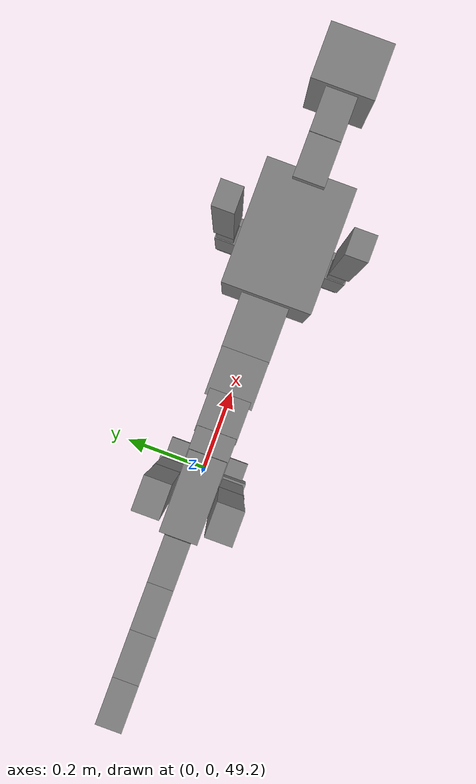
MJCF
<mujoco model="dog">

    <default>
        <joint armature="0.02" stiffness="1" damping="0.2" limited="true"/>
        <geom condim="3" friction="1 0.05 0.05" margin="0.01"/>
        <motor ctrllimited="true" ctrlrange="-1.0 1.0" forcelimited="true" gear="50"/>
    </default>

    <compiler inertiafromgeom="true" angle="radian"/>

    <option timestep="0.016" iterations="50" tolerance="1e-10" solver="Newton" jacobian="dense" cone="pyramidal"/>

    <size nconmax="20000" njmax="60000" nstack="5000000"/>
    <visual>
        <map force="0.1" zfar="30"/>
        <rgba haze="0.15 0.25 0.35 1"/>
        <quality shadowsize="2048"/>
        <global offwidth="800" offheight="800"/>
    </visual>

    <asset>
        <texture type="skybox" builtin="gradient" rgb1="0.3 0.5 0.7" rgb2="0 0 0" width="512" height="512"/>
        <texture name="texplane" type="2d" builtin="checker" rgb1=".2 .3 .4" rgb2=".1 0.15 0.2" width="512" height="512"
                 mark="cross" markrgb=".8 .8 .8"/>
        <texture name="texgeom" type="cube" builtin="flat" mark="cross" width="127" height="1278" rgb1="0.8 0.6 0.4"
                 rgb2="0.8 0.6 0.4" markrgb="1 1 1" random="0.01"/>

        <material name="matplane" reflectance="0.3" texture="texplane" texrepeat="1 1" texuniform="true"/>
        <material name="matgeom" texture="texgeom" texuniform="true" rgba="0.8 0.6 .4 1"/>
    </asset>

    <worldbody>
        <geom name="floor" pos="0 0 0" size="0 0 .25" type="plane" material="matplane" condim="3"/>

        <light directional="false" diffuse=".2 .2 .2" specular="0 0 0" pos="0 0 5" dir="0 0 -1" castshadow="false"/>
        <light mode="targetbodycom" target="torso" directional="false" diffuse=".8 .8 .8" specular="0.3 0.3 0.3"
               pos="0 0 4.0" dir="0 0 -1"/>

        <body name="root" pos="0 0 50">
            <freejoint name="root_1"/>
            <geom type="box" pos="0 0 -0.02" size="0.0774  0.0358  0.063" density="2030"/>

            <body name="spine1" pos="0.054 0 0">
                <joint name="spine1_y" axis="0 1 0" range="0 0.7" limited="true"/>
                <geom type="box" pos="0.02375 0 -0.03" size="0.04375  0.0375  0.05985" density="2030"/>

                <body name="spine2" pos="0.0612 0 0">
                    <joint name="spine2_y" axis="0 1 0" range="-0.15 0.15" limited="true"/>
                    <geom type="box" pos="0.03555  0  -0.04" size="0.04055  0.039  0.06615" density="2030"/>

                    <body name="spine3" pos="0.0730 0 0">
                        <joint name="spine3_y" axis="0 1 0" range="-0.15 0.15" limited="true"/>
                        <geom type="box" pos="0.03555  0  -0.057" size="0.04555  0.0445  0.081" density="2030"/>

                        <body name="spine4" pos="0.0780 0 0">
                            <joint name="spine4_y" axis="0 1 0" range="-0.15 0.15" limited="true"/>
                            <geom type="box" pos="0.05265  0  -0.07" size="0.05265  0.045  0.09135" density="2030"/>

                            <body name="torso" pos="0.1082 0 0">
                                <joint name="torso_y" axis="0 1 0" range="-0.15 0.15" limited="true"/>
                                <geom type="box" pos="0.11925  0  -0.085" size="0.11925  0.085  0.11745"
                                      density="2030"/>

                                <body name="neck1" pos="0.2160  0   0.0180">
                                    <joint name="neck1_y" axis="0 1 0" range="-1.2  -1" limited="true"/>
                                    <geom type="box" pos="0.0423  0  0" size="0.0423  0.03  0.036" density="2325"/>

                                    <body name="neck2" pos="0.0853  0  0">
                                        <joint name="neck2_y" axis="0 1 0" range="0.1  0" limited="true"/>
                                        <geom type="box" pos="0.0423  0  0" size="0.0423  0.03  0.036" density="2325"/>

                                        <body name="head" pos="0.0853  0  0">
                                            <joint name="head_y" axis="0 1 0" range="-0.3  -0.2" limited="true"/>
                                            <geom type="box" pos="0.0531  0  -0.055" size="0.0531  0.06  0.1044"
                                                  density="4030"/>

                                        </body>
                                    </body>
                                </body>

                                <body name="front_shoulder" pos="0.156  0   -0.0480">
                                    <joint name="front_shoulder_y" axis="0 1 0" range="-1 1.5" limited="true"/>
                                    <geom type="box" pos="0 0.13 -0.1438" size="0.0267  0.0229  0.1705" density="1158"/>
                                    <geom type="box" pos="0 -0.13 -0.1438" size="0.0267  0.0229  0.1705"
                                          density="1158"/>

                                    <body name="front_elbow" pos="0  0  -0.2877">
                                        <joint name="front_elbow_y" axis="0 1 0" range="-2 0" limited="true"/>
                                        <geom type="box" pos="0 0.13 -0.0802" size="0.0194  0.0198  0.0802"
                                              density="1081"/>
                                        <geom type="box" pos="0 -0.13 -0.0802" size="0.0194  0.0198  0.0802"
                                              density="1081"/>

                                        <body name="front_wrist" pos="0  0  -0.1605">
                                            <joint name="front_wrist_y" axis="0 1 0" range="-0.2 0" limited="true"/>
                                            <geom type="box" pos="0 0.13 -0.0794" size="0.0217  0.0241  0.0926"
                                                  density="1664"/>
                                            <geom type="box" pos="0 -0.13 -0.0794" size="0.0217  0.0241  0.0926"
                                                  density="1664"/>

                                            <body name="front_finger_end" pos="0  0  -0.1589">
                                                <joint name="front_finger_y" axis="0 1 0" range="-0.4 1"
                                                       limited="true"/>
                                                <geom type="box" pos="0.0223  0.13  -0.0181"
                                                      size="0.0408  0.0223  0.0331" density="1515"/>
                                                <geom type="box" pos="0.0223  -0.13  -0.0181"
                                                      size="0.0408  0.0223  0.0331" density="1515"/>

                                            </body>

                                        </body>
                                    </body>
                                </body>

                            </body>
                        </body>
                    </body>
                </body>
            </body>

            <body name="back_hip" pos="-0.03 0 -0.018">
                <joint name="back_hip_y" axis="0 1 0" range="-1.5 0.3" limited="true"/>
                <geom type="box" pos="0 0.07 -0.1458" size="0.0342  0.0269  0.1686" density="1154"/>
                <geom type="box" pos="0 -0.07 -0.1458" size="0.0342  0.0269  0.1686" density="1154"/>

                <body name="back_knee" pos="0  0  -0.2916">
                    <joint name="back_knee_y" axis="0 1 0" range="0 2.8" limited="true"/>
                    <geom type="box" pos="0 0.07 -0.1757" size="0.0308  0.0304  0.1912" density="1227"/>
                    <geom type="box" pos="0 -0.07 -0.1757" size="0.0308  0.0304  0.1912" density="1227"/>

                    <body name="back_ankle" pos="0  0  -0.3513">
                        <joint name="back_ankle_y" axis="0 1 0" range="-2.2 0" limited="true"/>
                        <geom type="box" pos="0 0.07 -0.0372" size="0.0366  0.0366  0.0485" density="1284"/>
                        <geom type="box" pos="0 -0.07 -0.0372" size="0.0366  0.0366  0.0485" density="1284"/>

                        <body name="back_toe_end" pos="0  0  -0.0744">
                            <joint name="back_toe_y" axis="0 1 0" range="-0.4 1" limited="true"/>
                            <geom type="box" pos="0.0278  0.07  0.0006" size="0.0510  0.0278  0.0144" density="1515"/>
                            <geom type="box" pos="0.0278  -0.07  0.0006" size="0.0510  0.0278  0.0144" density="1515"/>

                        </body>
                    </body>
                </body>
            </body>

            <body name="tail1" pos="-0.074 0 -0.006">
                <joint name="tail1_y" axis="0 1 0" range="-0.2 0.2" limited="true"/>
                <geom type="box" pos="-0.0536  0  0" size="0.045  0.025  0.0175" density="1587"/>

                <body name="tail2" pos="-0.09 0 0">
                    <joint name="tail2_y" axis="0 1 0" range="-0.2 0.2" limited="true"/>
                    <geom type="box" pos="-0.0536  0  0" size="0.045  0.025  0.0175" density="1587"/>

                    <body name="tail3" pos="-0.09 0 0">
                        <joint name="tail3_y" axis="0 1 0" range="-0.2 0.2" limited="true"/>
                        <geom type="box" pos="-0.0536  0  0" size="0.045  0.025  0.0175" density="1587"/>

                        <body name="tail4" pos="-0.09 0 0">
                            <joint name="tail4_y" axis="0 1 0" range="-0.2 0.2" limited="true"/>
                            <geom type="box" pos="-0.0536  0  0" size="0.045  0.025  0.0175" density="1587"/>

                        </body>
                    </body>
                </body>
            </body>
        </body>
    </worldbody>

    <actuator>
        <motor joint="spine1_y" forcerange="-150 150     "/>
        <motor joint="spine2_y" forcerange="-150 150     "/>
        <motor joint="spine3_y" forcerange="-150 150     "/>
        <motor joint="spine4_y" forcerange="-150 150     "/>
        <motor joint="torso_y" forcerange="-150 150     "/>
        <motor joint="neck1_y" forcerange="-100 100       "/>
        <motor joint="neck2_y" forcerange="-100 100       "/>
        <motor joint="head_y" forcerange="-150 150       "/>
        <motor joint="front_shoulder_y" forcerange="-152.26 100.16"/>
        <motor joint="front_elbow_y" forcerange="-135.65 108.55"/>
        <motor joint="front_wrist_y" forcerange="-139.70 52.76"/>
        <motor joint="front_finger_y" forcerange="-57.91 20.79"/>
        <motor joint="back_hip_y" forcerange="-341.32 216.80"/>
        <motor joint="back_knee_y" forcerange="-343.06 298.54"/>
        <motor joint="back_angle_y" forcerange="-241.11 244.64"/>
        <motor joint="back_toe_y" forcerange="-101.57 41.17"/>
        <motor joint="tail1_y" forcerange="-50 50     "/>
        <motor joint="tail2_y" forcerange="-50 50     "/>
        <motor joint="tail3_y" forcerange="-50 50     "/>
        <motor joint="tail4_y" forcerange="-50 50     "/>
    </actuator>
</mujoco>
